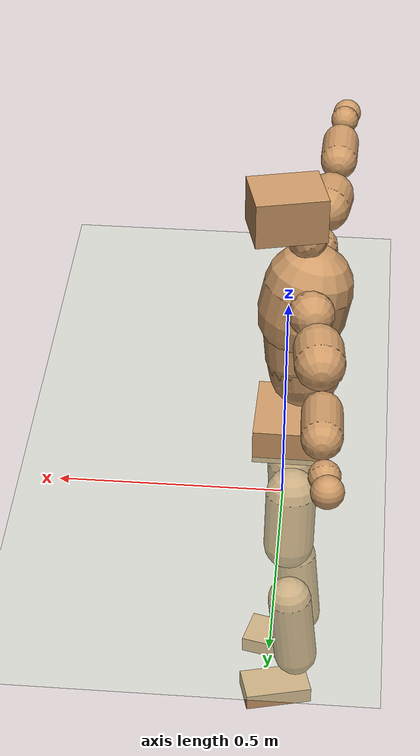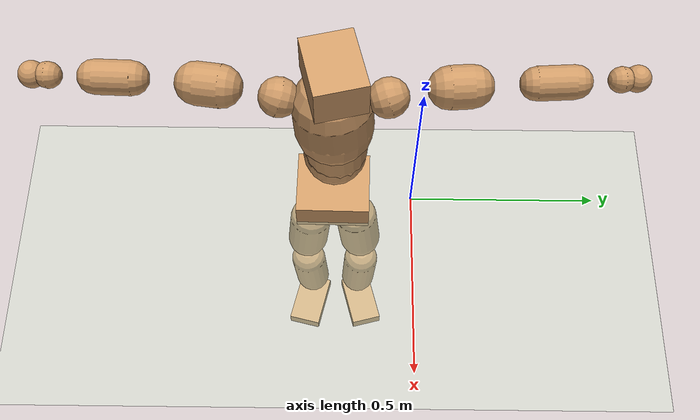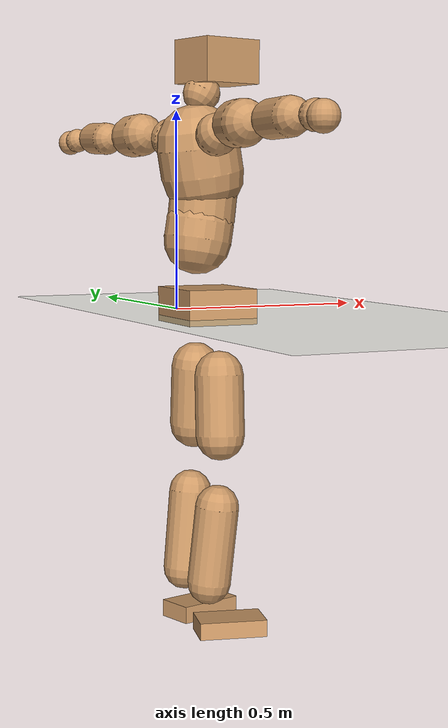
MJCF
<mujoco model="humanoid">
  <compiler coordinate="local" angle="radian"/>
  <default>
    <joint damping="0.0" armature="0.01" stiffness="0.0" limited="true"/>
    <geom conaffinity="1" condim="3" contype="7" margin="0.001" rgba="0.8 0.6 .4 1"/>
  </default>
  <asset>
    <texture type="skybox" builtin="gradient" rgb1=".4 .5 .6" rgb2="0 0 0" width="100" height="100"/>
    <texture builtin="flat" height="1278" mark="cross" markrgb="1 1 1" name="texgeom" random="0.01" rgb1="0.8 0.6 0.4" rgb2="0.8 0.6 0.4" type="cube" width="127"/>
    <texture builtin="checker" height="100" name="texplane" rgb1="0 0 0" rgb2="0.8 0.8 0.8" type="2d" width="100"/>
    <material name="MatPlane" reflectance="0.5" shininess="1" specular="1" texrepeat="60 60" texture="texplane"/>
    <material name="geom" texture="texgeom" texuniform="true"/>
  </asset>
  <worldbody>
    <light cutoff="100" diffuse="1 1 1" dir="-0 0 -1.3" directional="true" exponent="1" pos="0 0 1.3" specular=".1 .1 .1"/>
    <geom conaffinity="1" condim="3" name="floor" pos="0 0 0" rgba="0.8 0.9 0.8 1" size="100 100 .2" type="plane" material="MatPlane"/>
    <body name="Pelvis" pos="-0.003 -0.2137 0.033">
      <freejoint name="Pelvis"/>
      <geom type="box" contype="1" conaffinity="1" density="5359.375546" pos="-0.0096 0.0002 -0.0074" size="0.087 0.098 0.042" quat="1.0000 0.0000 0.0000 -0.0081" name="Pelvis"/>
      <body name="L_Hip" pos="-0.0131 0.0552 -0.0737">
        <joint name="L_Hip_x" type="hinge" pos="0 0 0" axis="1 0 0" stiffness="1600" damping="160" armature="0.02" range="-180.0000 180.0000"/>
        <joint name="L_Hip_y" type="hinge" pos="0 0 0" axis="0 1 0" stiffness="1600" damping="160" armature="0.02" range="-180.0000 180.0000"/>
        <joint name="L_Hip_z" type="hinge" pos="0 0 0" axis="0 0 1" stiffness="1600" damping="160" armature="0.02" range="-180.0000 180.0000"/>
        <geom type="capsule" contype="1" conaffinity="1" density="2040.816327" size="0.0587" fromto="0.0009 0.0085 -0.0882 0.0024 0.0223 -0.2326" name="L_Hip"/>
        <body name="L_Knee" pos="0.0033 0.0308 -0.3209">
          <joint name="L_Knee_x" type="hinge" pos="0 0 0" axis="1 0 0" stiffness="1600" damping="160" armature="0.02" range="-180.0000 180.0000"/>
          <joint name="L_Knee_y" type="hinge" pos="0 0 0" axis="0 1 0" stiffness="1600" damping="160" armature="0.02" range="-180.0000 180.0000"/>
          <joint name="L_Knee_z" type="hinge" pos="0 0 0" axis="0 0 1" stiffness="1600" damping="160" armature="0.02" range="-180.0000 180.0000"/>
          <geom type="capsule" contype="1" conaffinity="1" density="1234.567901" size="0.052" fromto="-0.0082 -0.0033 -0.0815 -0.0276 -0.0112 -0.2729" name="L_Knee"/>
          <body name="L_Ankle" pos="-0.0358 -0.0145 -0.3544">
            <joint name="L_Ankle_x" type="hinge" pos="0 0 0" axis="1 0 0" stiffness="1600" damping="160" armature="0.02" range="-180.0000 180.0000"/>
            <joint name="L_Ankle_y" type="hinge" pos="0 0 0" axis="0 1 0" stiffness="1600" damping="160" armature="0.02" range="-180.0000 180.0000"/>
            <joint name="L_Ankle_z" type="hinge" pos="0 0 0" axis="0 0 1" stiffness="1600" damping="160" armature="0.02" range="-180.0000 180.0000"/>
            <geom type="box" contype="1" conaffinity="1" density="999.999966" pos="0.0549 0.0145 -0.0252" size="0.0811 0.0463 0.0206" quat="0.9917 0.0000 0.0000 0.1285" name="L_Ankle"/>
            <body name="L_Toe" pos="0.1098 0.0289 -0.0503">
              <joint name="L_Toe_x" type="hinge" pos="0 0 0" axis="1 0 0" stiffness="1000" damping="100" armature="0.02" range="-180.0000 180.0000"/>
              <joint name="L_Toe_y" type="hinge" pos="0 0 0" axis="0 1 0" stiffness="1000" damping="100" armature="0.02" range="-180.0000 180.0000"/>
              <joint name="L_Toe_z" type="hinge" pos="0 0 0" axis="0 0 1" stiffness="1000" damping="100" armature="0.02" range="-180.0000 180.0000"/>
              <geom type="box" contype="1" conaffinity="1" density="8275760.870834" pos="0.0000 0.0000 0.0243" size="0.001 0.0023 0.001" quat="0.9909 0.0000 0.0000 0.1345" name="L_Toe"/>
            </body>
          </body>
        </body>
      </body>
      <body name="R_Hip" pos="-0.0064 -0.0586 -0.0825">
        <joint name="R_Hip_x" type="hinge" pos="0 0 0" axis="1 0 0" stiffness="1600" damping="160" armature="0.02" range="-180.0000 180.0000"/>
        <joint name="R_Hip_y" type="hinge" pos="0 0 0" axis="0 1 0" stiffness="1600" damping="160" armature="0.02" range="-180.0000 180.0000"/>
        <joint name="R_Hip_z" type="hinge" pos="0 0 0" axis="0 0 1" stiffness="1600" damping="160" armature="0.02" range="-180.0000 180.0000"/>
        <geom type="capsule" contype="1" conaffinity="1" density="2040.816327" size="0.0584" fromto="-0.0021 -0.0082 -0.0880 -0.0055 -0.0216 -0.2316" name="R_Hip"/>
        <body name="R_Knee" pos="-0.0076 -0.0298 -0.3196">
          <joint name="R_Knee_x" type="hinge" pos="0 0 0" axis="1 0 0" stiffness="1600" damping="160" armature="0.02" range="-180.0000 180.0000"/>
          <joint name="R_Knee_y" type="hinge" pos="0 0 0" axis="0 1 0" stiffness="1600" damping="160" armature="0.02" range="-180.0000 180.0000"/>
          <joint name="R_Knee_z" type="hinge" pos="0 0 0" axis="0 0 1" stiffness="1600" damping="160" armature="0.02" range="-180.0000 180.0000"/>
          <geom type="capsule" contype="1" conaffinity="1" density="1234.567901" size="0.0524" fromto="-0.0077 0.0039 -0.0820 -0.0250 0.0127 -0.2651" name="R_Knee"/>
          <body name="R_Ankle" pos="-0.0327 0.0166 -0.3471">
            <joint name="R_Ankle_x" type="hinge" pos="0 0 0" axis="1 0 0" stiffness="1600" damping="160" armature="0.02" range="-180.0000 180.0000"/>
            <joint name="R_Ankle_y" type="hinge" pos="0 0 0" axis="0 1 0" stiffness="1600" damping="160" armature="0.02" range="-180.0000 180.0000"/>
            <joint name="R_Ankle_z" type="hinge" pos="0 0 0" axis="0 0 1" stiffness="1600" damping="160" armature="0.02" range="-180.0000 180.0000"/>
            <geom type="box" contype="1" conaffinity="1" density="999.999987" pos="0.0580 -0.0140 -0.0262" size="0.0812 0.0493 0.0202" quat="0.9930 0.0000 0.0000 -0.1184" name="R_Ankle"/>
            <body name="R_Toe" pos="0.116 -0.0281 -0.0523">
              <joint name="R_Toe_x" type="hinge" pos="0 0 0" axis="1 0 0" stiffness="1000" damping="100" armature="0.02" range="-180.0000 180.0000"/>
              <joint name="R_Toe_y" type="hinge" pos="0 0 0" axis="0 1 0" stiffness="1000" damping="100" armature="0.02" range="-180.0000 180.0000"/>
              <joint name="R_Toe_z" type="hinge" pos="0 0 0" axis="0 0 1" stiffness="1000" damping="100" armature="0.02" range="-180.0000 180.0000"/>
              <geom type="box" contype="1" conaffinity="1" density="7927212.71597" pos="0.0000 0.0000 0.0270" size="0.0011 0.0025 0.0011" quat="0.9941 0.0000 0.0000 -0.1085" name="R_Toe"/>
            </body>
          </body>
        </body>
      </body>
      <body name="Torso" pos="-0.0383 0.0043 0.1121">
        <joint name="Torso_x" type="hinge" pos="0 0 0" axis="1 0 0" stiffness="2000" damping="200" armature="0.02" range="-180.0000 180.0000"/>
        <joint name="Torso_y" type="hinge" pos="0 0 0" axis="0 1 0" stiffness="2000" damping="200" armature="0.02" range="-180.0000 180.0000"/>
        <joint name="Torso_z" type="hinge" pos="0 0 0" axis="0 0 1" stiffness="2000" damping="200" armature="0.02" range="-180.0000 180.0000"/>
        <geom type="capsule" contype="1" conaffinity="1" density="2040.816327" size="0.0816" fromto="0.0140 0.0028 0.0804 0.0064 0.0013 0.0365" name="Torso"/>
        <body name="Spine" pos="0.0204 0.0041 0.1169">
          <joint name="Spine_x" type="hinge" pos="0 0 0" axis="1 0 0" stiffness="2000" damping="200" armature="0.02" range="-180.0000 180.0000"/>
          <joint name="Spine_y" type="hinge" pos="0 0 0" axis="0 1 0" stiffness="2000" damping="200" armature="0.02" range="-180.0000 180.0000"/>
          <joint name="Spine_z" type="hinge" pos="0 0 0" axis="0 0 1" stiffness="2000" damping="200" armature="0.02" range="-180.0000 180.0000"/>
          <geom type="capsule" contype="1" conaffinity="1" density="2040.816327" size="0.0808" fromto="0.0079 -0.0027 0.0804 -0.0033 0.0011 -0.0336" name="Spine"/>
          <body name="Chest" pos="0.0046 -0.0016 0.0468">
            <joint name="Chest_x" type="hinge" pos="0 0 0" axis="1 0 0" stiffness="2000" damping="200" armature="0.02" range="-180.0000 180.0000"/>
            <joint name="Chest_y" type="hinge" pos="0 0 0" axis="0 1 0" stiffness="2000" damping="200" armature="0.02" range="-180.0000 180.0000"/>
            <joint name="Chest_z" type="hinge" pos="0 0 0" axis="0 0 1" stiffness="2000" damping="200" armature="0.02" range="-180.0000 180.0000"/>
            <geom type="capsule" contype="1" conaffinity="1" density="2040.816327" size="0.0997" fromto="-0.0190 -0.0065 0.0976 -0.0058 -0.0020 0.0298" name="Chest"/>
            <body name="Neck" pos="-0.0336 -0.0144 0.1823">
              <joint name="Neck_x" type="hinge" pos="0 0 0" axis="1 0 0" stiffness="1000" damping="100" armature="0.02" range="-180.0000 180.0000"/>
              <joint name="Neck_y" type="hinge" pos="0 0 0" axis="0 1 0" stiffness="1000" damping="100" armature="0.02" range="-180.0000 180.0000"/>
              <joint name="Neck_z" type="hinge" pos="0 0 0" axis="0 0 1" stiffness="1000" damping="100" armature="0.02" range="-180.0000 180.0000"/>
              <geom type="capsule" contype="1" conaffinity="1" density="1000" size="0.0443" fromto="0.0216 0.0045 0.0365 0.0226 0.0047 0.0382" name="Neck"/>
              <body name="Head" pos="0.0442 0.0093 0.0748">
                <joint name="Head_x" type="hinge" pos="0 0 0" axis="1 0 0" stiffness="1000" damping="100" armature="0.02" range="-180.0000 180.0000"/>
                <joint name="Head_y" type="hinge" pos="0 0 0" axis="0 1 0" stiffness="1000" damping="100" armature="0.02" range="-180.0000 180.0000"/>
                <joint name="Head_z" type="hinge" pos="0 0 0" axis="0 0 1" stiffness="1000" damping="100" armature="0.02" range="-180.0000 180.0000"/>
                <geom type="box" contype="1" conaffinity="1" density="2250.000122" pos="0.0231 0.0056 0.0384" size="0.0789 0.0626 0.0521" quat="0.9928 0.0000 0.0000 0.1195" name="Head"/>
              </body>
            </body>
            <body name="L_Thorax" pos="-0.0184 0.068 0.1001">
              <joint name="L_Thorax_x" type="hinge" pos="0 0 0" axis="1 0 0" stiffness="1000" damping="100" armature="0.02" range="-180.0000 180.0000"/>
              <joint name="L_Thorax_y" type="hinge" pos="0 0 0" axis="0 1 0" stiffness="1000" damping="100" armature="0.02" range="-180.0000 180.0000"/>
              <joint name="L_Thorax_z" type="hinge" pos="0 0 0" axis="0 0 1" stiffness="1000" damping="100" armature="0.02" range="-180.0000 180.0000"/>
              <geom type="capsule" contype="1" conaffinity="1" density="1000" size="0.0502" fromto="-0.0115 0.0604 0.0178 -0.0119 0.0623 0.0183" name="L_Thorax"/>
              <body name="L_Shoulder" pos="-0.0234 0.1226 0.0361">
                <joint name="L_Shoulder_x" type="hinge" pos="0 0 0" axis="1 0 0" stiffness="1000" damping="100" armature="0.02" range="-720.0000 720.0000"/>
                <joint name="L_Shoulder_y" type="hinge" pos="0 0 0" axis="0 1 0" stiffness="1000" damping="100" armature="0.02" range="-720.0000 720.0000"/>
                <joint name="L_Shoulder_z" type="hinge" pos="0 0 0" axis="0 0 1" stiffness="1000" damping="100" armature="0.02" range="-720.0000 720.0000"/>
                <geom type="capsule" contype="1" conaffinity="1" density="1000" size="0.0534" fromto="-0.0083 0.0829 -0.0033 -0.0137 0.1375 -0.0054" name="L_Shoulder"/>
                <body name="L_Elbow" pos="-0.022 0.2205 -0.0087">
                  <joint name="L_Elbow_x" type="hinge" pos="0 0 0" axis="1 0 0" stiffness="1000" damping="100" armature="0.02" range="-720.0000 720.0000"/>
                  <joint name="L_Elbow_y" type="hinge" pos="0 0 0" axis="0 1 0" stiffness="1000" damping="100" armature="0.02" range="-720.0000 720.0000"/>
                  <joint name="L_Elbow_z" type="hinge" pos="0 0 0" axis="0 0 1" stiffness="1000" damping="100" armature="0.02" range="-720.0000 720.0000"/>
                  <geom type="capsule" contype="1" conaffinity="1" density="1000" size="0.0419" fromto="-0.0022 0.0718 0.0029 -0.0050 0.1631 0.0067" name="L_Elbow"/>
                  <body name="L_Wrist" pos="-0.0073 0.2349 0.0097">
                    <joint name="L_Wrist_x" type="hinge" pos="0 0 0" axis="1 0 0" stiffness="600" damping="60" armature="0.02" range="-180.0000 180.0000"/>
                    <joint name="L_Wrist_y" type="hinge" pos="0 0 0" axis="0 1 0" stiffness="600" damping="60" armature="0.02" range="-180.0000 180.0000"/>
                    <joint name="L_Wrist_z" type="hinge" pos="0 0 0" axis="0 0 1" stiffness="600" damping="60" armature="0.02" range="-180.0000 180.0000"/>
                    <geom type="capsule" contype="1" conaffinity="1" density="1000" size="0.0321" fromto="-0.0069 0.0392 -0.0048 -0.0072 0.0411 -0.0051" name="L_Wrist"/>
                    <body name="L_Hand" pos="-0.0141 0.0803 -0.0099">
                      <joint name="L_Hand_x" type="hinge" pos="0 0 0" axis="1 0 0" stiffness="600" damping="60" armature="0.02" range="-180.0000 180.0000"/>
                      <joint name="L_Hand_y" type="hinge" pos="0 0 0" axis="0 1 0" stiffness="600" damping="60" armature="0.02" range="-180.0000 180.0000"/>
                      <joint name="L_Hand_z" type="hinge" pos="0 0 0" axis="0 0 1" stiffness="600" damping="60" armature="0.02" range="-180.0000 180.0000"/>
                      <geom type="sphere" contype="1" conaffinity="1" density="1000" size="0.0331" pos="0.0000 0.0000 0.0000" name="L_Hand"/>
                    </body>
                  </body>
                </body>
              </body>
            </body>
            <body name="R_Thorax" pos="-0.0224 -0.0791 0.1">
              <joint name="R_Thorax_x" type="hinge" pos="0 0 0" axis="1 0 0" stiffness="1000" damping="100" armature="0.02" range="-180.0000 180.0000"/>
              <joint name="R_Thorax_y" type="hinge" pos="0 0 0" axis="0 1 0" stiffness="1000" damping="100" armature="0.02" range="-180.0000 180.0000"/>
              <joint name="R_Thorax_z" type="hinge" pos="0 0 0" axis="0 0 1" stiffness="1000" damping="100" armature="0.02" range="-180.0000 180.0000"/>
              <geom type="capsule" contype="1" conaffinity="1" density="1000" size="0.0497" fromto="-0.0059 -0.0538 0.0182 -0.0061 -0.0557 0.0188" name="R_Thorax"/>
              <body name="R_Shoulder" pos="-0.012 -0.1094 0.0369">
                <joint name="R_Shoulder_x" type="hinge" pos="0 0 0" axis="1 0 0" stiffness="1000" damping="100" armature="0.02" range="-720.0000 720.0000"/>
                <joint name="R_Shoulder_y" type="hinge" pos="0 0 0" axis="0 1 0" stiffness="1000" damping="100" armature="0.02" range="-720.0000 720.0000"/>
                <joint name="R_Shoulder_z" type="hinge" pos="0 0 0" axis="0 0 1" stiffness="1000" damping="100" armature="0.02" range="-720.0000 720.0000"/>
                <geom type="capsule" contype="1" conaffinity="1" density="1000" size="0.0532" fromto="-0.0116 -0.0824 -0.0009 -0.0199 -0.1416 -0.0016" name="R_Shoulder"/>
                <body name="R_Elbow" pos="-0.0314 -0.224 -0.0025">
                  <joint name="R_Elbow_x" type="hinge" pos="0 0 0" axis="1 0 0" stiffness="1000" damping="100" armature="0.02" range="-720.0000 720.0000"/>
                  <joint name="R_Elbow_y" type="hinge" pos="0 0 0" axis="0 1 0" stiffness="1000" damping="100" armature="0.02" range="-720.0000 720.0000"/>
                  <joint name="R_Elbow_z" type="hinge" pos="0 0 0" axis="0 0 1" stiffness="1000" damping="100" armature="0.02" range="-720.0000 720.0000"/>
                  <geom type="capsule" contype="1" conaffinity="1" density="1000" size="0.0426" fromto="-0.0017 -0.0726 0.0010 -0.0037 -0.1616 0.0021" name="R_Elbow"/>
                  <body name="R_Wrist" pos="-0.0054 -0.2342 0.0031">
                    <joint name="R_Wrist_x" type="hinge" pos="0 0 0" axis="1 0 0" stiffness="600" damping="60" armature="0.02" range="-180.0000 180.0000"/>
                    <joint name="R_Wrist_y" type="hinge" pos="0 0 0" axis="0 1 0" stiffness="600" damping="60" armature="0.02" range="-180.0000 180.0000"/>
                    <joint name="R_Wrist_z" type="hinge" pos="0 0 0" axis="0 0 1" stiffness="600" damping="60" armature="0.02" range="-180.0000 180.0000"/>
                    <geom type="capsule" contype="1" conaffinity="1" density="1000" size="0.0328" fromto="-0.0044 -0.0399 -0.0040 -0.0046 -0.0418 -0.0042" name="R_Wrist"/>
                    <body name="R_Hand" pos="-0.009 -0.0817 -0.0083">
                      <joint name="R_Hand_x" type="hinge" pos="0 0 0" axis="1 0 0" stiffness="600" damping="60" armature="0.02" range="-180.0000 180.0000"/>
                      <joint name="R_Hand_y" type="hinge" pos="0 0 0" axis="0 1 0" stiffness="600" damping="60" armature="0.02" range="-180.0000 180.0000"/>
                      <joint name="R_Hand_z" type="hinge" pos="0 0 0" axis="0 0 1" stiffness="600" damping="60" armature="0.02" range="-180.0000 180.0000"/>
                      <geom type="sphere" contype="1" conaffinity="1" density="1000" size="0.0335" pos="0.0000 0.0000 0.0000" name="R_Hand"/>
                    </body>
                  </body>
                </body>
              </body>
            </body>
          </body>
        </body>
      </body>
    </body>
  </worldbody>
  <actuator>
    <motor name="L_Hip_x" joint="L_Hip_x" gear="500"/>
    <motor name="L_Hip_y" joint="L_Hip_y" gear="500"/>
    <motor name="L_Hip_z" joint="L_Hip_z" gear="500"/>
    <motor name="L_Knee_x" joint="L_Knee_x" gear="500"/>
    <motor name="L_Knee_y" joint="L_Knee_y" gear="500"/>
    <motor name="L_Knee_z" joint="L_Knee_z" gear="500"/>
    <motor name="L_Ankle_x" joint="L_Ankle_x" gear="500"/>
    <motor name="L_Ankle_y" joint="L_Ankle_y" gear="500"/>
    <motor name="L_Ankle_z" joint="L_Ankle_z" gear="500"/>
    <motor name="L_Toe_x" joint="L_Toe_x" gear="500"/>
    <motor name="L_Toe_y" joint="L_Toe_y" gear="500"/>
    <motor name="L_Toe_z" joint="L_Toe_z" gear="500"/>
    <motor name="R_Hip_x" joint="R_Hip_x" gear="500"/>
    <motor name="R_Hip_y" joint="R_Hip_y" gear="500"/>
    <motor name="R_Hip_z" joint="R_Hip_z" gear="500"/>
    <motor name="R_Knee_x" joint="R_Knee_x" gear="500"/>
    <motor name="R_Knee_y" joint="R_Knee_y" gear="500"/>
    <motor name="R_Knee_z" joint="R_Knee_z" gear="500"/>
    <motor name="R_Ankle_x" joint="R_Ankle_x" gear="500"/>
    <motor name="R_Ankle_y" joint="R_Ankle_y" gear="500"/>
    <motor name="R_Ankle_z" joint="R_Ankle_z" gear="500"/>
    <motor name="R_Toe_x" joint="R_Toe_x" gear="500"/>
    <motor name="R_Toe_y" joint="R_Toe_y" gear="500"/>
    <motor name="R_Toe_z" joint="R_Toe_z" gear="500"/>
    <motor name="Torso_x" joint="Torso_x" gear="500"/>
    <motor name="Torso_y" joint="Torso_y" gear="500"/>
    <motor name="Torso_z" joint="Torso_z" gear="500"/>
    <motor name="Spine_x" joint="Spine_x" gear="500"/>
    <motor name="Spine_y" joint="Spine_y" gear="500"/>
    <motor name="Spine_z" joint="Spine_z" gear="500"/>
    <motor name="Chest_x" joint="Chest_x" gear="500"/>
    <motor name="Chest_y" joint="Chest_y" gear="500"/>
    <motor name="Chest_z" joint="Chest_z" gear="500"/>
    <motor name="Neck_x" joint="Neck_x" gear="500"/>
    <motor name="Neck_y" joint="Neck_y" gear="500"/>
    <motor name="Neck_z" joint="Neck_z" gear="500"/>
    <motor name="Head_x" joint="Head_x" gear="500"/>
    <motor name="Head_y" joint="Head_y" gear="500"/>
    <motor name="Head_z" joint="Head_z" gear="500"/>
    <motor name="L_Thorax_x" joint="L_Thorax_x" gear="500"/>
    <motor name="L_Thorax_y" joint="L_Thorax_y" gear="500"/>
    <motor name="L_Thorax_z" joint="L_Thorax_z" gear="500"/>
    <motor name="L_Shoulder_x" joint="L_Shoulder_x" gear="500"/>
    <motor name="L_Shoulder_y" joint="L_Shoulder_y" gear="500"/>
    <motor name="L_Shoulder_z" joint="L_Shoulder_z" gear="500"/>
    <motor name="L_Elbow_x" joint="L_Elbow_x" gear="500"/>
    <motor name="L_Elbow_y" joint="L_Elbow_y" gear="500"/>
    <motor name="L_Elbow_z" joint="L_Elbow_z" gear="500"/>
    <motor name="L_Wrist_x" joint="L_Wrist_x" gear="500"/>
    <motor name="L_Wrist_y" joint="L_Wrist_y" gear="500"/>
    <motor name="L_Wrist_z" joint="L_Wrist_z" gear="500"/>
    <motor name="L_Hand_x" joint="L_Hand_x" gear="500"/>
    <motor name="L_Hand_y" joint="L_Hand_y" gear="500"/>
    <motor name="L_Hand_z" joint="L_Hand_z" gear="500"/>
    <motor name="R_Thorax_x" joint="R_Thorax_x" gear="500"/>
    <motor name="R_Thorax_y" joint="R_Thorax_y" gear="500"/>
    <motor name="R_Thorax_z" joint="R_Thorax_z" gear="500"/>
    <motor name="R_Shoulder_x" joint="R_Shoulder_x" gear="500"/>
    <motor name="R_Shoulder_y" joint="R_Shoulder_y" gear="500"/>
    <motor name="R_Shoulder_z" joint="R_Shoulder_z" gear="500"/>
    <motor name="R_Elbow_x" joint="R_Elbow_x" gear="500"/>
    <motor name="R_Elbow_y" joint="R_Elbow_y" gear="500"/>
    <motor name="R_Elbow_z" joint="R_Elbow_z" gear="500"/>
    <motor name="R_Wrist_x" joint="R_Wrist_x" gear="500"/>
    <motor name="R_Wrist_y" joint="R_Wrist_y" gear="500"/>
    <motor name="R_Wrist_z" joint="R_Wrist_z" gear="500"/>
    <motor name="R_Hand_x" joint="R_Hand_x" gear="500"/>
    <motor name="R_Hand_y" joint="R_Hand_y" gear="500"/>
    <motor name="R_Hand_z" joint="R_Hand_z" gear="500"/>
  </actuator>
  <contact>
    <exclude body1="Torso" body2="Chest"/>
    <exclude body1="Head" body2="Chest"/>
    <exclude body1="R_Knee" body2="R_Toe"/>
    <exclude body1="R_Knee" body2="L_Ankle"/>
    <exclude body1="R_Knee" body2="L_Toe"/>
    <exclude body1="L_Knee" body2="L_Toe"/>
    <exclude body1="L_Knee" body2="R_Ankle"/>
    <exclude body1="L_Knee" body2="R_Toe"/>
    <exclude body1="L_Shoulder" body2="Chest"/>
    <exclude body1="R_Shoulder" body2="Chest"/>
  </contact>
  <sensor/>
  <size njmax="700" nconmax="700"/>
</mujoco>
